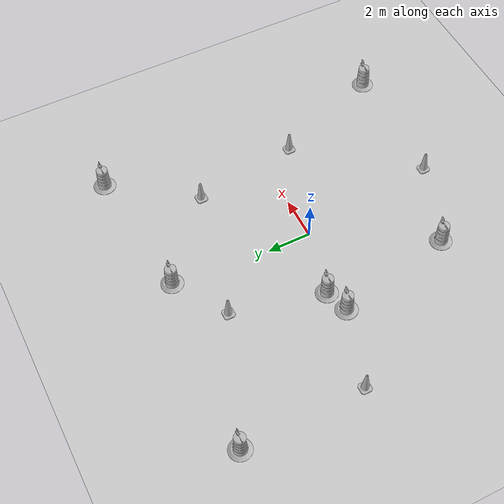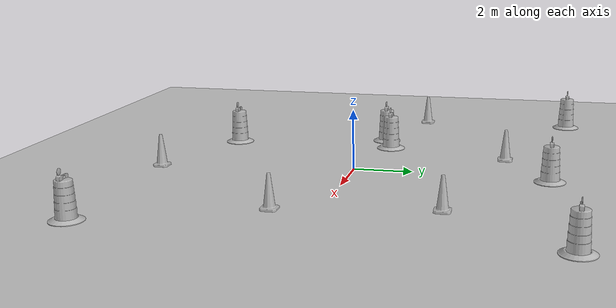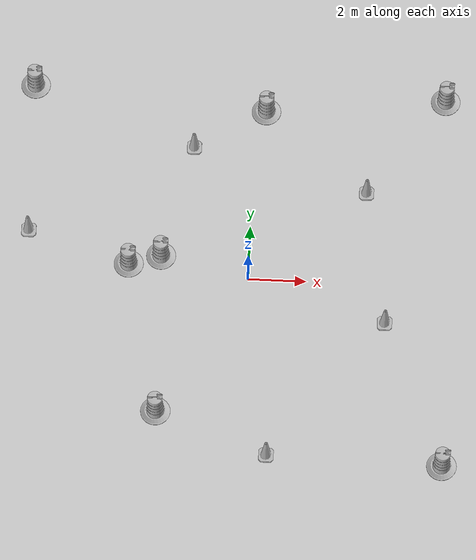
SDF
<sdf version="1.7">
 <world name="default">
  <light name="sun" type="directional">
   <pose>0 0 10 0 -0 0</pose>
   <diffuse>0.8 0.8 0.8 1</diffuse>
   <specular>0.2 0.2 0.2 1</specular>
   <attenuation>
    <range>1000</range>
    <constant>0.9</constant>
    <linear>0.01</linear>
    <quadratic>0.001</quadratic>
   </attenuation>
   <direction>-0.5 0.1 -0.9</direction>
   <spot><inner_angle>0</inner_angle><outer_angle>0</outer_angle><falloff>0</falloff></spot>
  </light>
  <model name="ground_plane">
   <static>1</static>
   <link name="link">
    <collision name="collision">
     <geometry><plane><normal>0 0 1</normal><size>100 100</size></plane></geometry>
     <surface>
      <contact><collide_bitmask>65535</collide_bitmask></contact>
      <friction><ode><mu>100</mu><mu2>50</mu2></ode></friction>
     </surface>
    </collision>
    <visual name="visual">
     <cast_shadows>0</cast_shadows>
     <geometry><plane><normal>0 0 1</normal><size>100 100</size></plane></geometry>
     <material>
      <script><uri>file://media/materials/scripts/gazebo.material</uri><name>Gazebo/Grey</name></script>
     </material>
    </visual>
   </link>
  </model>
  <gravity>0 0 -9.8</gravity>
  <magnetic_field>6e-06 2.3e-05 -4.2e-05</magnetic_field>
  <atmosphere type="adiabatic"/>
  <physics type="ode">
   <max_step_size>0.001</max_step_size>
   <real_time_factor>1</real_time_factor>
   <real_time_update_rate>1000</real_time_update_rate>
  </physics>
  <scene><ambient>0.4 0.4 0.4 1</ambient><background>0.7 0.7 0.7 1</background><shadows>1</shadows></scene>
  <audio><device>default</device></audio>
  <spherical_coordinates>
   <surface_model>EARTH_WGS84</surface_model>
   <latitude_deg>0</latitude_deg>
   <longitude_deg>0</longitude_deg>
   <elevation>0</elevation>
   <heading_deg>0</heading_deg>
  </spherical_coordinates>
  <model name="Construction Barrel">
   <link name="link">
    <inertial>
     <pose>0 0 0.4 0 -0 0</pose>
     <mass>500</mass>
     <inertia><ixx>51.2096</ixx><iyy>51.2096</iyy><izz>25</izz><ixy>0</ixy><ixz>0</ixz><iyz>0</iyz></inertia>
    </inertial>
    <collision name="collision">
     <geometry><mesh><uri>model://construction_barrel/meshes/construction_barrel.dae</uri></mesh></geometry>
    </collision>
    <visual name="visual">
     <geometry><mesh><uri>model://construction_barrel/meshes/construction_barrel.dae</uri></mesh></geometry>
    </visual>
   </link>
   <pose>-3.03235 0.765806 1e-06 3e-06 2e-06 -2e-05</pose>
  </model>
  <model name="Construction Cone">
   <link name="link">
    <collision name="collision">
     <geometry>
      <mesh><scale>10 10 10</scale><uri>model://construction_cone/meshes/construction_cone.dae</uri></mesh>
     </geometry>
    </collision>
    <visual name="visual">
     <geometry>
      <mesh><scale>10 10 10</scale><uri>model://construction_cone/meshes/construction_cone.dae</uri></mesh>
     </geometry>
    </visual>
    <inertial>
     <inertia><ixx>1</ixx><ixy>0</ixy><ixz>0</ixz><iyy>1</iyy><iyz>0</iyz><izz>1</izz></inertia>
     <mass>1</mass>
    </inertial>
   </link>
   <pose>-2.0691 4.95284 0 -0 -0 -0</pose>
  </model>
  <model name="Construction Barrel_0">
   <link name="link">
    <inertial>
     <pose>0 0 0.4 0 -0 0</pose>
     <mass>500</mass>
     <inertia><ixx>51.2096</ixx><iyy>51.2096</iyy><izz>25</izz><ixy>0</ixy><ixz>0</ixz><iyz>0</iyz></inertia>
    </inertial>
    <collision name="collision">
     <geometry><mesh><uri>model://construction_barrel/meshes/construction_barrel.dae</uri></mesh></geometry>
    </collision>
    <visual name="visual">
     <geometry><mesh><uri>model://construction_barrel/meshes/construction_barrel.dae</uri></mesh></geometry>
    </visual>
   </link>
   <pose>-4.13329 0.424316 -2e-06 8e-06 -4e-06 -1.7e-05</pose>
  </model>
  <model name="Construction Barrel_1">
   <link name="link">
    <inertial>
     <pose>0 0 0.4 0 -0 0</pose>
     <mass>500</mass>
     <inertia><ixx>51.2096</ixx><iyy>51.2096</iyy><izz>25</izz><ixy>0</ixy><ixz>0</ixz><iyz>0</iyz></inertia>
    </inertial>
    <collision name="collision">
     <geometry><mesh><uri>model://construction_barrel/meshes/construction_barrel.dae</uri></mesh></geometry>
    </collision>
    <visual name="visual">
     <geometry><mesh><uri>model://construction_barrel/meshes/construction_barrel.dae</uri></mesh></geometry>
    </visual>
   </link>
   <pose>-2.95019 -5.02426 -1e-06 3e-06 7e-06 -1.5e-05</pose>
  </model>
  <model name="Construction Barrel_2">
   <link name="link">
    <inertial>
     <pose>0 0 0.4 0 -0 0</pose>
     <mass>500</mass>
     <inertia><ixx>51.2096</ixx><iyy>51.2096</iyy><izz>25</izz><ixy>0</ixy><ixz>0</ixz><iyz>0</iyz></inertia>
    </inertial>
    <collision name="collision">
     <geometry><mesh><uri>model://construction_barrel/meshes/construction_barrel.dae</uri></mesh></geometry>
    </collision>
    <visual name="visual">
     <geometry><mesh><uri>model://construction_barrel/meshes/construction_barrel.dae</uri></mesh></geometry>
    </visual>
   </link>
   <pose>0.385024 6.45287 0 0 0 -1.5e-05</pose>
  </model>
  <model name="Construction Barrel_3">
   <link name="link">
    <inertial>
     <pose>0 0 0.4 0 -0 0</pose>
     <mass>500</mass>
     <inertia><ixx>51.2096</ixx><iyy>51.2096</iyy><izz>25</izz><ixy>0</ixy><ixz>0</ixz><iyz>0</iyz></inertia>
    </inertial>
    <collision name="collision">
     <geometry><mesh><uri>model://construction_barrel/meshes/construction_barrel.dae</uri></mesh></geometry>
    </collision>
    <visual name="visual">
     <geometry><mesh><uri>model://construction_barrel/meshes/construction_barrel.dae</uri></mesh></geometry>
    </visual>
   </link>
   <pose>-7.73624 7.16352 -0 1e-06 -1e-06 -1.2e-05</pose>
  </model>
  <model name="Construction Cone_0">
   <link name="link">
    <collision name="collision">
     <geometry>
      <mesh><scale>10 10 10</scale><uri>model://construction_cone/meshes/construction_cone.dae</uri></mesh>
     </geometry>
    </collision>
    <visual name="visual">
     <geometry>
      <mesh><scale>10 10 10</scale><uri>model://construction_cone/meshes/construction_cone.dae</uri></mesh>
     </geometry>
    </visual>
    <inertial>
     <inertia><ixx>1</ixx><ixy>0</ixy><ixz>0</ixz><iyy>1</iyy><iyz>0</iyz><izz>1</izz></inertia>
     <mass>1</mass>
    </inertial>
   </link>
   <pose>4.73205 -1.47215 -0 2e-06 -2e-06 -0</pose>
  </model>
  <model name="Construction Cone_1">
   <link name="link">
    <collision name="collision">
     <geometry>
      <mesh><scale>10 10 10</scale><uri>model://construction_cone/meshes/construction_cone.dae</uri></mesh>
     </geometry>
    </collision>
    <visual name="visual">
     <geometry>
      <mesh><scale>10 10 10</scale><uri>model://construction_cone/meshes/construction_cone.dae</uri></mesh>
     </geometry>
    </visual>
    <inertial>
     <inertia><ixx>1</ixx><ixy>0</ixy><ixz>0</ixz><iyy>1</iyy><iyz>0</iyz><izz>1</izz></inertia>
     <mass>1</mass>
    </inertial>
   </link>
   <pose>0.859694 -6.49018 -0 0 -0 0</pose>
  </model>
  <model name="Construction Cone_2">
   <link name="link">
    <collision name="collision">
     <geometry>
      <mesh><scale>10 10 10</scale><uri>model://construction_cone/meshes/construction_cone.dae</uri></mesh>
     </geometry>
    </collision>
    <visual name="visual">
     <geometry>
      <mesh><scale>10 10 10</scale><uri>model://construction_cone/meshes/construction_cone.dae</uri></mesh>
     </geometry>
    </visual>
    <inertial>
     <inertia><ixx>1</ixx><ixy>0</ixy><ixz>0</ixz><iyy>1</iyy><iyz>0</iyz><izz>1</izz></inertia>
     <mass>1</mass>
    </inertial>
   </link>
   <pose>3.97632 3.42346 -0 0 -0 0</pose>
  </model>
  <model name="Construction Cone_3">
   <link name="link">
    <collision name="collision">
     <geometry>
      <mesh><scale>10 10 10</scale><uri>model://construction_cone/meshes/construction_cone.dae</uri></mesh>
     </geometry>
    </collision>
    <visual name="visual">
     <geometry>
      <mesh><scale>10 10 10</scale><uri>model://construction_cone/meshes/construction_cone.dae</uri></mesh>
     </geometry>
    </visual>
    <inertial>
     <inertia><ixx>1</ixx><ixy>0</ixy><ixz>0</ixz><iyy>1</iyy><iyz>0</iyz><izz>1</izz></inertia>
     <mass>1</mass>
    </inertial>
   </link>
   <pose>-7.64787 1.55929 -1e-05 -1e-06 0 0</pose>
  </model>
  <model name="Construction Barrel_4">
   <link name="link">
    <inertial>
     <pose>0 0 0.4 0 -0 0</pose>
     <mass>500</mass>
     <inertia><ixx>51.2096</ixx><iyy>51.2096</iyy><izz>25</izz><ixy>0</ixy><ixz>0</ixz><iyz>0</iyz></inertia>
    </inertial>
    <collision name="collision">
     <geometry><mesh><uri>model://construction_barrel/meshes/construction_barrel.dae</uri></mesh></geometry>
    </collision>
    <visual name="visual">
     <geometry><mesh><uri>model://construction_barrel/meshes/construction_barrel.dae</uri></mesh></geometry>
    </visual>
   </link>
   <pose>6.78849 -6.6528 0 0 0 -3e-06</pose>
  </model>
  <model name="Construction Barrel_5">
   <link name="link">
    <inertial>
     <pose>0 0 0.4 0 -0 0</pose>
     <mass>500</mass>
     <inertia><ixx>51.2096</ixx><iyy>51.2096</iyy><izz>25</izz><ixy>0</ixy><ixz>0</ixz><iyz>0</iyz></inertia>
    </inertial>
    <collision name="collision">
     <geometry><mesh><uri>model://construction_barrel/meshes/construction_barrel.dae</uri></mesh></geometry>
    </collision>
    <visual name="visual">
     <geometry><mesh><uri>model://construction_barrel/meshes/construction_barrel.dae</uri></mesh></geometry>
    </visual>
   </link>
   <pose>6.64607 7.07436 -1e-06 3e-06 -2e-06 -2e-06</pose>
  </model>
 </world>
</sdf>
